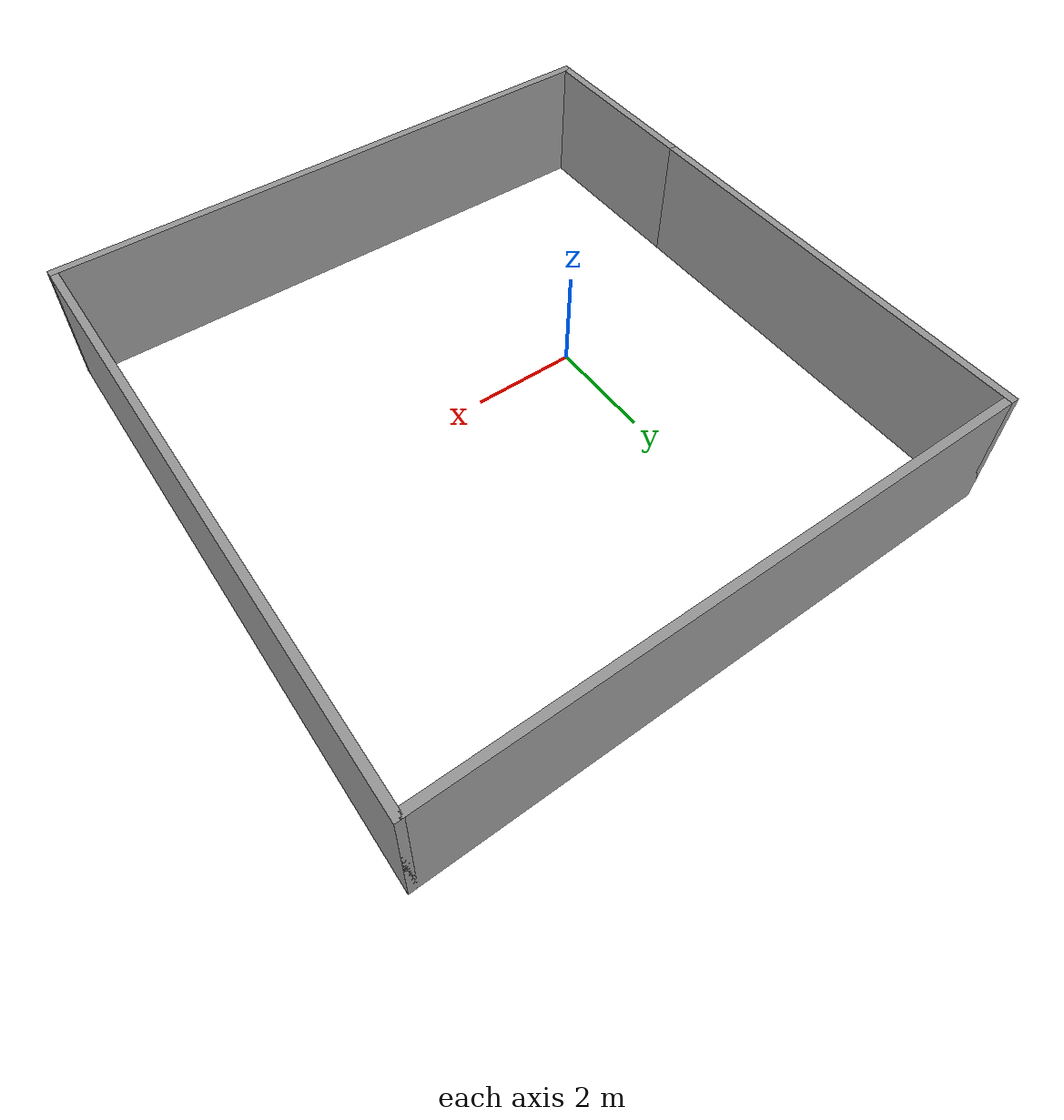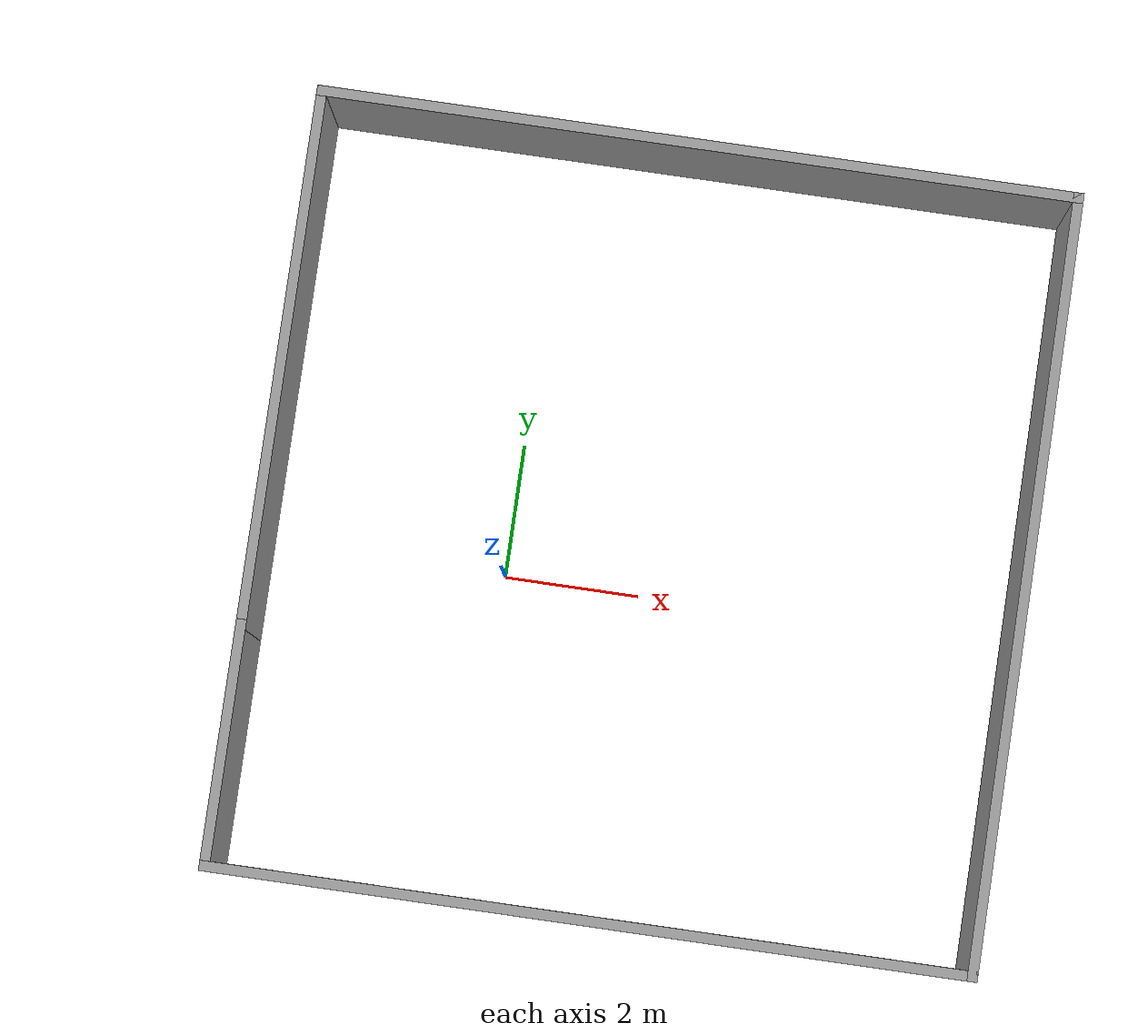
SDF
<?xml version='1.0'?>
<sdf version='1.7'>
  <model name='walls'>
    <pose>1.98 0.785 0 0 -0 0</pose>
    <link name='Wall_0'>
      <collision name='Wall_0_Collision'>
        <geometry>
          <box>
            <size>8 0.15 2.5</size>
          </box>
        </geometry>
        <pose>0 0 1.25 0 -0 0</pose>
      </collision>
      <visual name='Wall_0_Visual'>
        <pose>0 0 1.25 0 -0 0</pose>
        <geometry>
          <box>
            <size>8 0.15 2.5</size>
          </box>
        </geometry>
        <material>
          <script>
            <uri>file://media/materials/scripts/gazebo.material</uri>
            <name>Gazebo/Grey</name>
          </script>
          <ambient>1 1 1 1</ambient>
        </material>
        <meta>
          <layer>0</layer>
        </meta>
      </visual>
      <pose>-5.55 1.75 0 0 -0 1.5708</pose>
    </link>
    <link name='Wall_1'>
      <collision name='Wall_1_Collision'>
        <geometry>
          <box>
            <size>11.25 0.15 2.5</size>
          </box>
        </geometry>
        <pose>0 0 1.25 0 -0 0</pose>
      </collision>
      <visual name='Wall_1_Visual'>
        <pose>0 0 1.25 0 -0 0</pose>
        <geometry>
          <box>
            <size>11.25 0.15 2.5</size>
          </box>
        </geometry>
        <material>
          <script>
            <uri>file://media/materials/scripts/gazebo.material</uri>
            <name>Gazebo/Grey</name>
          </script>
          <ambient>1 1 1 1</ambient>
        </material>
        <meta>
          <layer>0</layer>
        </meta>
      </visual>
      <pose>-0 5.675 0 0 -0 0</pose>
    </link>
    <link name='Wall_2'>
      <collision name='Wall_2_Collision'>
        <geometry>
          <box>
            <size>11.5 0.15 2.5</size>
          </box>
        </geometry>
        <pose>0 0 1.25 0 -0 0</pose>
      </collision>
      <visual name='Wall_2_Visual'>
        <pose>0 0 1.25 0 -0 0</pose>
        <geometry>
          <box>
            <size>11.5 0.15 2.5</size>
          </box>
        </geometry>
        <material>
          <script>
            <uri>file://media/materials/scripts/gazebo.material</uri>
            <name>Gazebo/Grey</name>
          </script>
          <ambient>1 1 1 1</ambient>
        </material>
        <meta>
          <layer>0</layer>
        </meta>
      </visual>
      <pose>5.55 -0 0 0 -0 -1.5708</pose>
    </link>
    <link name='Wall_3'>
      <collision name='Wall_3_Collision'>
        <geometry>
          <box>
            <size>11.25 0.15 2.5</size>
          </box>
        </geometry>
        <pose>0 0 1.25 0 -0 0</pose>
      </collision>
      <visual name='Wall_3_Visual'>
        <pose>0 0 1.25 0 -0 0</pose>
        <geometry>
          <box>
            <size>11.25 0.15 2.5</size>
          </box>
        </geometry>
        <material>
          <script>
            <uri>file://media/materials/scripts/gazebo.material</uri>
            <name>Gazebo/Grey</name>
          </script>
          <ambient>1 1 1 1</ambient>
        </material>
        <meta>
          <layer>0</layer>
        </meta>
      </visual>
      <pose>-0 -5.675 0 0 -0 3.14159</pose>
    </link>
    <link name='Wall_4'>
      <collision name='Wall_4_Collision'>
        <geometry>
          <box>
            <size>3.65 0.15 2.5</size>
          </box>
        </geometry>
        <pose>0 0 1.25 0 -0 0</pose>
      </collision>
      <visual name='Wall_4_Visual'>
        <pose>0 0 1.25 0 -0 0</pose>
        <geometry>
          <box>
            <size>3.65 0.15 2.5</size>
          </box>
        </geometry>
        <material>
          <script>
            <uri>file://media/materials/scripts/gazebo.material</uri>
            <name>Gazebo/Grey</name>
          </script>
          <ambient>1 1 1 1</ambient>
        </material>
        <meta>
          <layer>0</layer>
        </meta>
      </visual>
      <pose>-5.55 -3.925 0 0 -0 1.5708</pose>
    </link>
    <static>1</static>
  </model>
</sdf>
